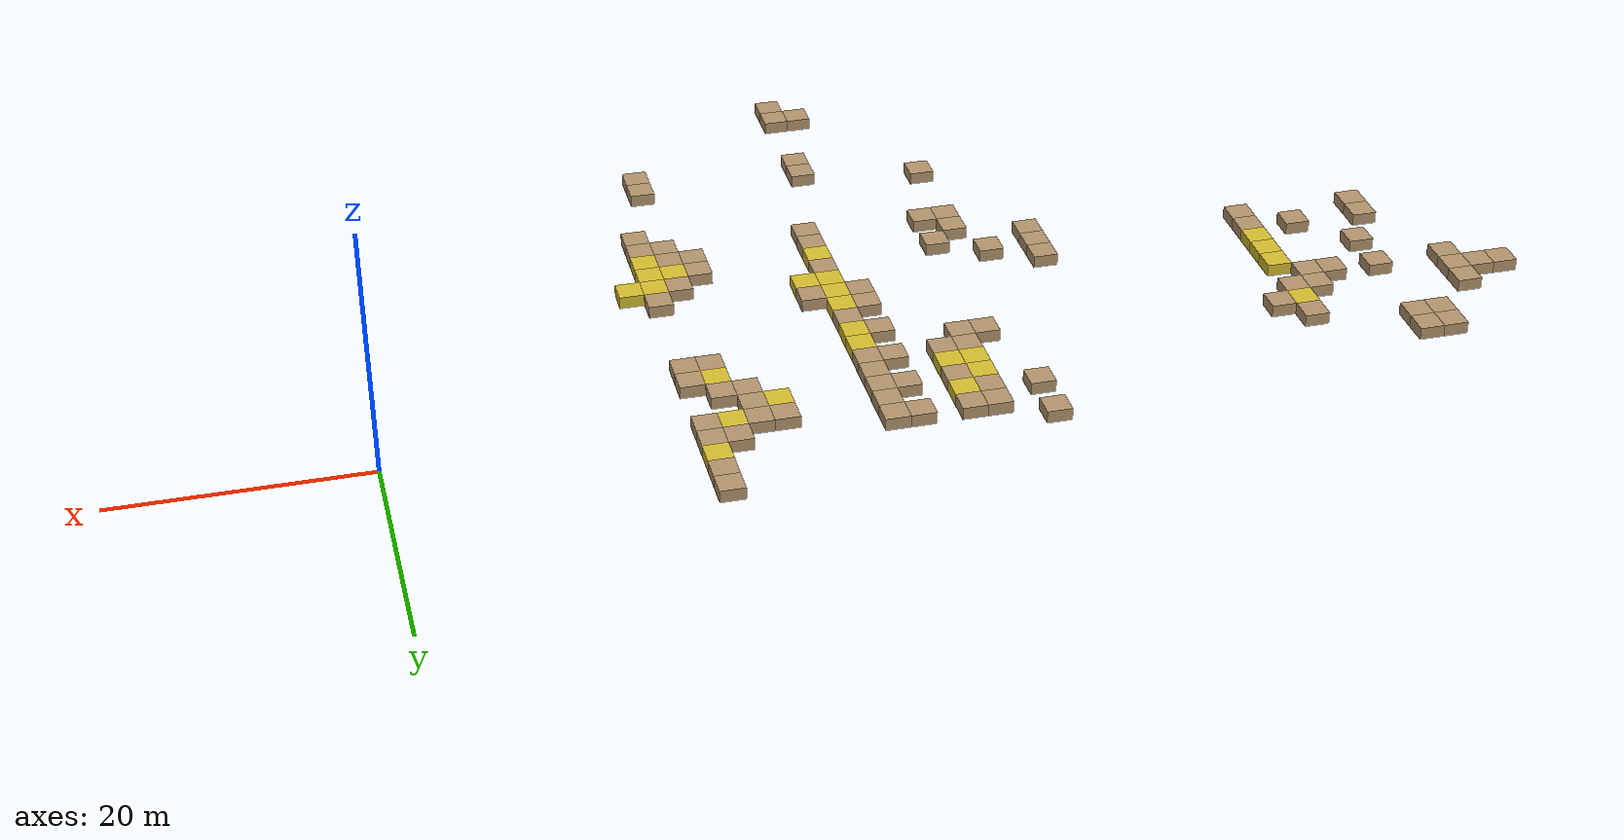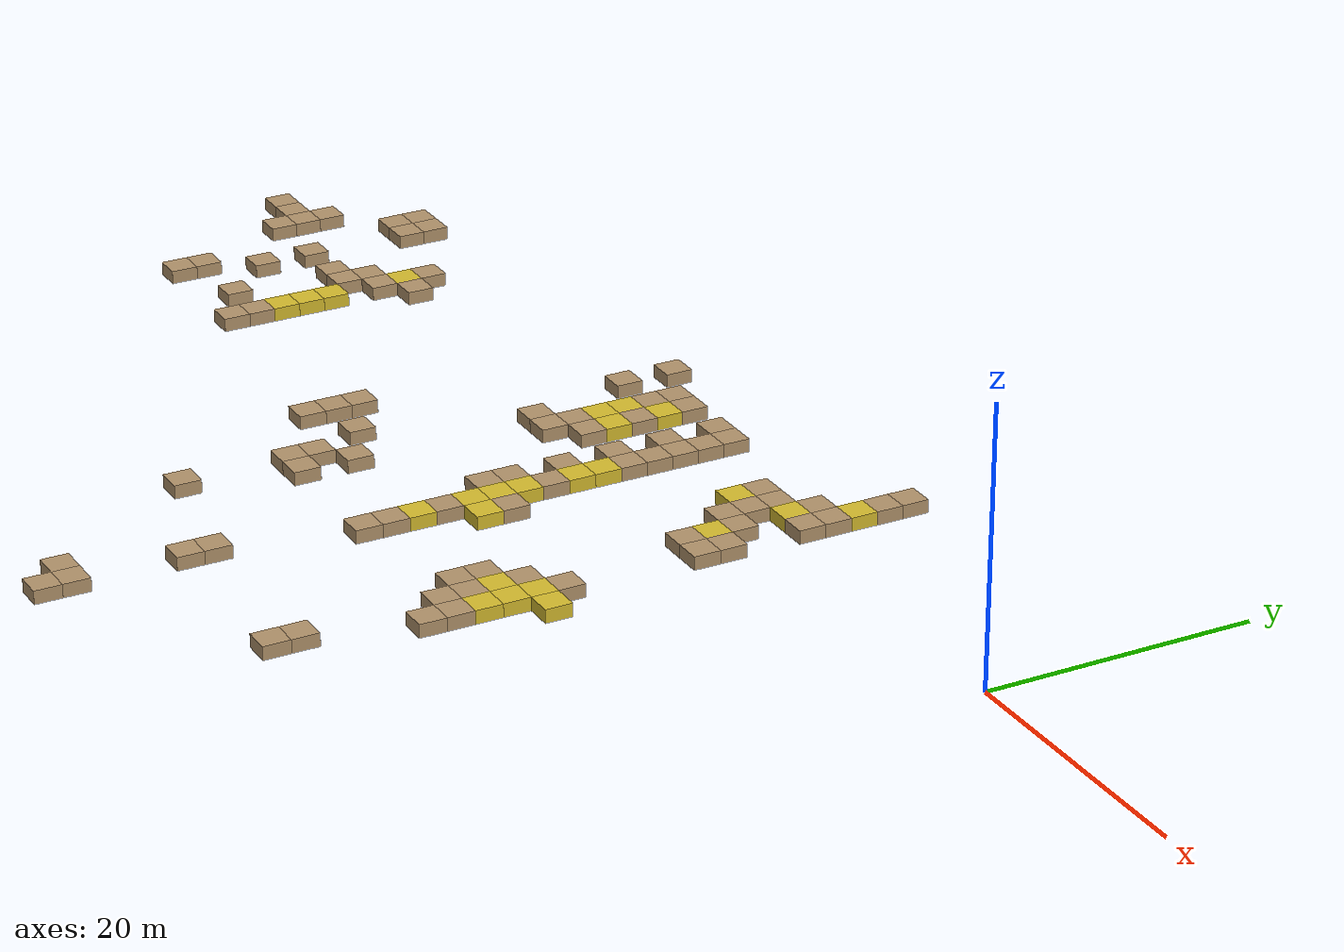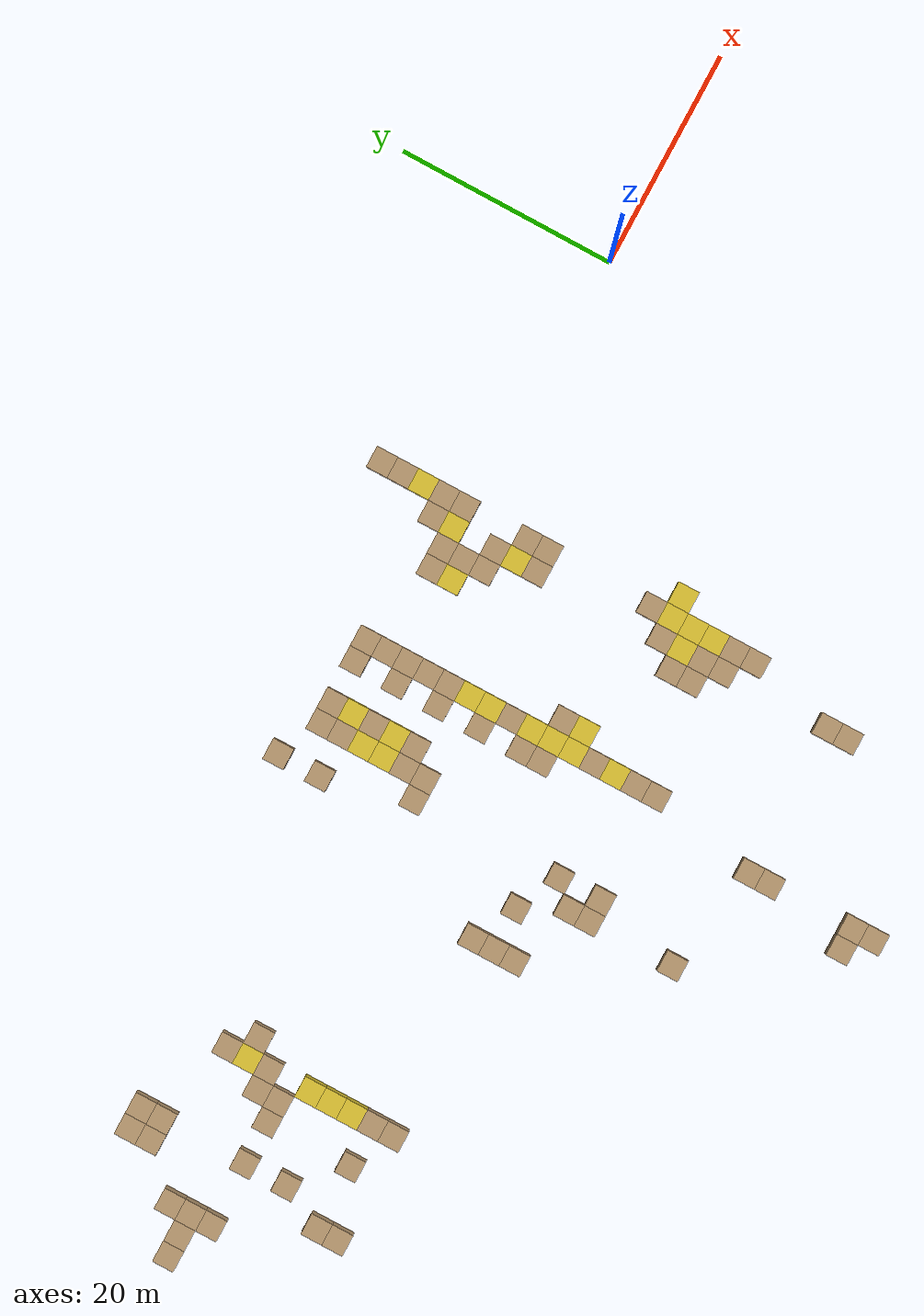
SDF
<sdf version="1.6">
 <world name="map5_factory_approx">
  <model name="map5_obstacle_blocks">
   <static>true</static>
   <link name="obs_0043_0039">
    <pose>-22.210 -19.041 0.500 0 0 0</pose>
    <collision name="collision"><geometry><box><size>2.000 2.000 1.000</size></box></geometry></collision>
    <visual name="visual">
     <geometry><box><size>2.000 2.000 1.000</size></box></geometry>
     <material><ambient>0.84 0.74 0.18 1</ambient><diffuse>0.84 0.74 0.18 1</diffuse></material>
    </visual>
   </link>
   <link name="obs_0042_0039">
    <pose>-24.210 -19.041 0.500 0 0 0</pose>
    <collision name="collision"><geometry><box><size>2.000 2.000 1.000</size></box></geometry></collision>
    <visual name="visual">
     <geometry><box><size>2.000 2.000 1.000</size></box></geometry>
     <material><ambient>0.84 0.74 0.18 1</ambient><diffuse>0.84 0.74 0.18 1</diffuse></material>
    </visual>
   </link>
   <link name="obs_0041_0032">
    <pose>-26.210 -5.041 0.500 0 0 0</pose>
    <collision name="collision"><geometry><box><size>2.000 2.000 1.000</size></box></geometry></collision>
    <visual name="visual">
     <geometry><box><size>2.000 2.000 1.000</size></box></geometry>
     <material><ambient>0.84 0.74 0.18 1</ambient><diffuse>0.84 0.74 0.18 1</diffuse></material>
    </visual>
   </link>
   <link name="obs_0042_0040">
    <pose>-24.210 -21.041 0.500 0 0 0</pose>
    <collision name="collision"><geometry><box><size>2.000 2.000 1.000</size></box></geometry></collision>
    <visual name="visual">
     <geometry><box><size>2.000 2.000 1.000</size></box></geometry>
     <material><ambient>0.84 0.74 0.18 1</ambient><diffuse>0.84 0.74 0.18 1</diffuse></material>
    </visual>
   </link>
   <link name="obs_0036_0038">
    <pose>-36.210 -17.041 0.500 0 0 0</pose>
    <collision name="collision"><geometry><box><size>2.000 2.000 1.000</size></box></geometry></collision>
    <visual name="visual">
     <geometry><box><size>2.000 2.000 1.000</size></box></geometry>
     <material><ambient>0.84 0.74 0.18 1</ambient><diffuse>0.84 0.74 0.18 1</diffuse></material>
    </visual>
   </link>
   <link name="obs_0039_0030">
    <pose>-30.210 -1.041 0.500 0 0 0</pose>
    <collision name="collision"><geometry><box><size>2.000 2.000 1.000</size></box></geometry></collision>
    <visual name="visual">
     <geometry><box><size>2.000 2.000 1.000</size></box></geometry>
     <material><ambient>0.84 0.74 0.18 1</ambient><diffuse>0.84 0.74 0.18 1</diffuse></material>
    </visual>
   </link>
   <link name="obs_0035_0033">
    <pose>-38.210 -7.041 0.500 0 0 0</pose>
    <collision name="collision"><geometry><box><size>2.000 2.000 1.000</size></box></geometry></collision>
    <visual name="visual">
     <geometry><box><size>2.000 2.000 1.000</size></box></geometry>
     <material><ambient>0.84 0.74 0.18 1</ambient><diffuse>0.84 0.74 0.18 1</diffuse></material>
    </visual>
   </link>
   <link name="obs_0035_0037">
    <pose>-38.210 -15.041 0.500 0 0 0</pose>
    <collision name="collision"><geometry><box><size>2.000 2.000 1.000</size></box></geometry></collision>
    <visual name="visual">
     <geometry><box><size>2.000 2.000 1.000</size></box></geometry>
     <material><ambient>0.84 0.74 0.18 1</ambient><diffuse>0.84 0.74 0.18 1</diffuse></material>
    </visual>
   </link>
   <link name="obs_0035_0036">
    <pose>-38.210 -13.041 0.500 0 0 0</pose>
    <collision name="collision"><geometry><box><size>2.000 2.000 1.000</size></box></geometry></collision>
    <visual name="visual">
     <geometry><box><size>2.000 2.000 1.000</size></box></geometry>
     <material><ambient>0.84 0.74 0.18 1</ambient><diffuse>0.84 0.74 0.18 1</diffuse></material>
    </visual>
   </link>
   <link name="obs_0031_0030">
    <pose>-46.210 -1.041 0.500 0 0 0</pose>
    <collision name="collision"><geometry><box><size>2.000 2.000 1.000</size></box></geometry></collision>
    <visual name="visual">
     <geometry><box><size>2.000 2.000 1.000</size></box></geometry>
     <material><ambient>0.84 0.74 0.18 1</ambient><diffuse>0.84 0.74 0.18 1</diffuse></material>
    </visual>
   </link>
   <link name="obs_0031_0031">
    <pose>-46.210 -3.041 0.500 0 0 0</pose>
    <collision name="collision"><geometry><box><size>2.000 2.000 1.000</size></box></geometry></collision>
    <visual name="visual">
     <geometry><box><size>2.000 2.000 1.000</size></box></geometry>
     <material><ambient>0.84 0.74 0.18 1</ambient><diffuse>0.84 0.74 0.18 1</diffuse></material>
    </visual>
   </link>
   <link name="obs_0035_0038">
    <pose>-38.210 -17.041 0.500 0 0 0</pose>
    <collision name="collision"><geometry><box><size>2.000 2.000 1.000</size></box></geometry></collision>
    <visual name="visual">
     <geometry><box><size>2.000 2.000 1.000</size></box></geometry>
     <material><ambient>0.84 0.74 0.18 1</ambient><diffuse>0.84 0.74 0.18 1</diffuse></material>
    </visual>
   </link>
   <link name="obs_0032_0029">
    <pose>-44.210 0.959 0.500 0 0 0</pose>
    <collision name="collision"><geometry><box><size>2.000 2.000 1.000</size></box></geometry></collision>
    <visual name="visual">
     <geometry><box><size>2.000 2.000 1.000</size></box></geometry>
     <material><ambient>0.84 0.74 0.18 1</ambient><diffuse>0.84 0.74 0.18 1</diffuse></material>
    </visual>
   </link>
   <link name="obs_0035_0034">
    <pose>-38.210 -9.041 0.500 0 0 0</pose>
    <collision name="collision"><geometry><box><size>2.000 2.000 1.000</size></box></geometry></collision>
    <visual name="visual">
     <geometry><box><size>2.000 2.000 1.000</size></box></geometry>
     <material><ambient>0.84 0.74 0.18 1</ambient><diffuse>0.84 0.74 0.18 1</diffuse></material>
    </visual>
   </link>
   <link name="obs_0041_0040">
    <pose>-26.210 -21.041 0.500 0 0 0</pose>
    <collision name="collision"><geometry><box><size>2.000 2.000 1.000</size></box></geometry></collision>
    <visual name="visual">
     <geometry><box><size>2.000 2.000 1.000</size></box></geometry>
     <material><ambient>0.84 0.74 0.18 1</ambient><diffuse>0.84 0.74 0.18 1</diffuse></material>
    </visual>
   </link>
   <link name="obs_0032_0031">
    <pose>-44.210 -3.041 0.500 0 0 0</pose>
    <collision name="collision"><geometry><box><size>2.000 2.000 1.000</size></box></geometry></collision>
    <visual name="visual">
     <geometry><box><size>2.000 2.000 1.000</size></box></geometry>
     <material><ambient>0.84 0.74 0.18 1</ambient><diffuse>0.84 0.74 0.18 1</diffuse></material>
    </visual>
   </link>
   <link name="obs_0042_0027">
    <pose>-24.210 4.959 0.500 0 0 0</pose>
    <collision name="collision"><geometry><box><size>2.000 2.000 1.000</size></box></geometry></collision>
    <visual name="visual">
     <geometry><box><size>2.000 2.000 1.000</size></box></geometry>
     <material><ambient>0.84 0.74 0.18 1</ambient><diffuse>0.84 0.74 0.18 1</diffuse></material>
    </visual>
   </link>
   <link name="obs_0017_0035">
    <pose>-74.210 -11.041 0.500 0 0 0</pose>
    <collision name="collision"><geometry><box><size>2.000 2.000 1.000</size></box></geometry></collision>
    <visual name="visual">
     <geometry><box><size>2.000 2.000 1.000</size></box></geometry>
     <material><ambient>0.84 0.74 0.18 1</ambient><diffuse>0.84 0.74 0.18 1</diffuse></material>
    </visual>
   </link>
   <link name="obs_0017_0036">
    <pose>-74.210 -13.041 0.500 0 0 0</pose>
    <collision name="collision"><geometry><box><size>2.000 2.000 1.000</size></box></geometry></collision>
    <visual name="visual">
     <geometry><box><size>2.000 2.000 1.000</size></box></geometry>
     <material><ambient>0.84 0.74 0.18 1</ambient><diffuse>0.84 0.74 0.18 1</diffuse></material>
    </visual>
   </link>
   <link name="obs_0042_0041">
    <pose>-24.210 -23.041 0.500 0 0 0</pose>
    <collision name="collision"><geometry><box><size>2.000 2.000 1.000</size></box></geometry></collision>
    <visual name="visual">
     <geometry><box><size>2.000 2.000 1.000</size></box></geometry>
     <material><ambient>0.84 0.74 0.18 1</ambient><diffuse>0.84 0.74 0.18 1</diffuse></material>
    </visual>
   </link>
   <link name="obs_0035_0040">
    <pose>-38.210 -21.041 0.500 0 0 0</pose>
    <collision name="collision"><geometry><box><size>2.000 2.000 1.000</size></box></geometry></collision>
    <visual name="visual">
     <geometry><box><size>2.000 2.000 1.000</size></box></geometry>
     <material><ambient>0.84 0.74 0.18 1</ambient><diffuse>0.84 0.74 0.18 1</diffuse></material>
    </visual>
   </link>
   <link name="obs_0017_0037">
    <pose>-74.210 -15.041 0.500 0 0 0</pose>
    <collision name="collision"><geometry><box><size>2.000 2.000 1.000</size></box></geometry></collision>
    <visual name="visual">
     <geometry><box><size>2.000 2.000 1.000</size></box></geometry>
     <material><ambient>0.84 0.74 0.18 1</ambient><diffuse>0.84 0.74 0.18 1</diffuse></material>
    </visual>
   </link>
   <link name="obs_0041_0029">
    <pose>-26.210 0.959 0.500 0 0 0</pose>
    <collision name="collision"><geometry><box><size>2.000 2.000 1.000</size></box></geometry></collision>
    <visual name="visual">
     <geometry><box><size>2.000 2.000 1.000</size></box></geometry>
     <material><ambient>0.84 0.74 0.18 1</ambient><diffuse>0.84 0.74 0.18 1</diffuse></material>
    </visual>
   </link>
   <link name="obs_0017_0032">
    <pose>-74.210 -5.041 0.500 0 0 0</pose>
    <collision name="collision"><geometry><box><size>2.000 2.000 1.000</size></box></geometry></collision>
    <visual name="visual">
     <geometry><box><size>2.000 2.000 1.000</size></box></geometry>
     <material><ambient>0.84 0.74 0.18 1</ambient><diffuse>0.84 0.74 0.18 1</diffuse></material>
    </visual>
   </link>
   <link name="obs_0035_0041">
    <pose>-38.210 -23.041 0.500 0 0 0</pose>
    <collision name="collision"><geometry><box><size>2.000 2.000 1.000</size></box></geometry></collision>
    <visual name="visual">
     <geometry><box><size>2.000 2.000 1.000</size></box></geometry>
     <material><ambient>0.70 0.58 0.42 1</ambient><diffuse>0.70 0.58 0.42 1</diffuse></material>
    </visual>
   </link>
   <link name="obs_0042_0029">
    <pose>-24.210 0.959 0.500 0 0 0</pose>
    <collision name="collision"><geometry><box><size>2.000 2.000 1.000</size></box></geometry></collision>
    <visual name="visual">
     <geometry><box><size>2.000 2.000 1.000</size></box></geometry>
     <material><ambient>0.70 0.58 0.42 1</ambient><diffuse>0.70 0.58 0.42 1</diffuse></material>
    </visual>
   </link>
   <link name="obs_0035_0035">
    <pose>-38.210 -11.041 0.500 0 0 0</pose>
    <collision name="collision"><geometry><box><size>2.000 2.000 1.000</size></box></geometry></collision>
    <visual name="visual">
     <geometry><box><size>2.000 2.000 1.000</size></box></geometry>
     <material><ambient>0.70 0.58 0.42 1</ambient><diffuse>0.70 0.58 0.42 1</diffuse></material>
    </visual>
   </link>
   <link name="obs_0042_0028">
    <pose>-24.210 2.959 0.500 0 0 0</pose>
    <collision name="collision"><geometry><box><size>2.000 2.000 1.000</size></box></geometry></collision>
    <visual name="visual">
     <geometry><box><size>2.000 2.000 1.000</size></box></geometry>
     <material><ambient>0.70 0.58 0.42 1</ambient><diffuse>0.70 0.58 0.42 1</diffuse></material>
    </visual>
   </link>
   <link name="obs_0041_0031">
    <pose>-26.210 -3.041 0.500 0 0 0</pose>
    <collision name="collision"><geometry><box><size>2.000 2.000 1.000</size></box></geometry></collision>
    <visual name="visual">
     <geometry><box><size>2.000 2.000 1.000</size></box></geometry>
     <material><ambient>0.70 0.58 0.42 1</ambient><diffuse>0.70 0.58 0.42 1</diffuse></material>
    </visual>
   </link>
   <link name="obs_0042_0026">
    <pose>-24.210 6.959 0.500 0 0 0</pose>
    <collision name="collision"><geometry><box><size>2.000 2.000 1.000</size></box></geometry></collision>
    <visual name="visual">
     <geometry><box><size>2.000 2.000 1.000</size></box></geometry>
     <material><ambient>0.70 0.58 0.42 1</ambient><diffuse>0.70 0.58 0.42 1</diffuse></material>
    </visual>
   </link>
   <link name="obs_0040_0029">
    <pose>-28.210 0.959 0.500 0 0 0</pose>
    <collision name="collision"><geometry><box><size>2.000 2.000 1.000</size></box></geometry></collision>
    <visual name="visual">
     <geometry><box><size>2.000 2.000 1.000</size></box></geometry>
     <material><ambient>0.70 0.58 0.42 1</ambient><diffuse>0.70 0.58 0.42 1</diffuse></material>
    </visual>
   </link>
   <link name="obs_0040_0030">
    <pose>-28.210 -1.041 0.500 0 0 0</pose>
    <collision name="collision"><geometry><box><size>2.000 2.000 1.000</size></box></geometry></collision>
    <visual name="visual">
     <geometry><box><size>2.000 2.000 1.000</size></box></geometry>
     <material><ambient>0.70 0.58 0.42 1</ambient><diffuse>0.70 0.58 0.42 1</diffuse></material>
    </visual>
   </link>
   <link name="obs_0035_0032">
    <pose>-38.210 -5.041 0.500 0 0 0</pose>
    <collision name="collision"><geometry><box><size>2.000 2.000 1.000</size></box></geometry></collision>
    <visual name="visual">
     <geometry><box><size>2.000 2.000 1.000</size></box></geometry>
     <material><ambient>0.70 0.58 0.42 1</ambient><diffuse>0.70 0.58 0.42 1</diffuse></material>
    </visual>
   </link>
   <link name="obs_0039_0029">
    <pose>-30.210 0.959 0.500 0 0 0</pose>
    <collision name="collision"><geometry><box><size>2.000 2.000 1.000</size></box></geometry></collision>
    <visual name="visual">
     <geometry><box><size>2.000 2.000 1.000</size></box></geometry>
     <material><ambient>0.70 0.58 0.42 1</ambient><diffuse>0.70 0.58 0.42 1</diffuse></material>
    </visual>
   </link>
   <link name="obs_0031_0032">
    <pose>-46.210 -5.041 0.500 0 0 0</pose>
    <collision name="collision"><geometry><box><size>2.000 2.000 1.000</size></box></geometry></collision>
    <visual name="visual">
     <geometry><box><size>2.000 2.000 1.000</size></box></geometry>
     <material><ambient>0.70 0.58 0.42 1</ambient><diffuse>0.70 0.58 0.42 1</diffuse></material>
    </visual>
   </link>
   <link name="obs_0042_0038">
    <pose>-24.210 -17.041 0.500 0 0 0</pose>
    <collision name="collision"><geometry><box><size>2.000 2.000 1.000</size></box></geometry></collision>
    <visual name="visual">
     <geometry><box><size>2.000 2.000 1.000</size></box></geometry>
     <material><ambient>0.70 0.58 0.42 1</ambient><diffuse>0.70 0.58 0.42 1</diffuse></material>
    </visual>
   </link>
   <link name="obs_0035_0039">
    <pose>-38.210 -19.041 0.500 0 0 0</pose>
    <collision name="collision"><geometry><box><size>2.000 2.000 1.000</size></box></geometry></collision>
    <visual name="visual">
     <geometry><box><size>2.000 2.000 1.000</size></box></geometry>
     <material><ambient>0.70 0.58 0.42 1</ambient><diffuse>0.70 0.58 0.42 1</diffuse></material>
    </visual>
   </link>
   <link name="obs_0012_0038">
    <pose>-84.210 -17.041 0.500 0 0 0</pose>
    <collision name="collision"><geometry><box><size>2.000 2.000 1.000</size></box></geometry></collision>
    <visual name="visual">
     <geometry><box><size>2.000 2.000 1.000</size></box></geometry>
     <material><ambient>0.70 0.58 0.42 1</ambient><diffuse>0.70 0.58 0.42 1</diffuse></material>
    </visual>
   </link>
   <link name="obs_0034_0037">
    <pose>-40.210 -15.041 0.500 0 0 0</pose>
    <collision name="collision"><geometry><box><size>2.000 2.000 1.000</size></box></geometry></collision>
    <visual name="visual">
     <geometry><box><size>2.000 2.000 1.000</size></box></geometry>
     <material><ambient>0.70 0.58 0.42 1</ambient><diffuse>0.70 0.58 0.42 1</diffuse></material>
    </visual>
   </link>
   <link name="obs_0031_0028">
    <pose>-46.210 2.959 0.500 0 0 0</pose>
    <collision name="collision"><geometry><box><size>2.000 2.000 1.000</size></box></geometry></collision>
    <visual name="visual">
     <geometry><box><size>2.000 2.000 1.000</size></box></geometry>
     <material><ambient>0.70 0.58 0.42 1</ambient><diffuse>0.70 0.58 0.42 1</diffuse></material>
    </visual>
   </link>
   <link name="obs_0042_0025">
    <pose>-24.210 8.959 0.500 0 0 0</pose>
    <collision name="collision"><geometry><box><size>2.000 2.000 1.000</size></box></geometry></collision>
    <visual name="visual">
     <geometry><box><size>2.000 2.000 1.000</size></box></geometry>
     <material><ambient>0.70 0.58 0.42 1</ambient><diffuse>0.70 0.58 0.42 1</diffuse></material>
    </visual>
   </link>
   <link name="obs_0031_0029">
    <pose>-46.210 0.959 0.500 0 0 0</pose>
    <collision name="collision"><geometry><box><size>2.000 2.000 1.000</size></box></geometry></collision>
    <visual name="visual">
     <geometry><box><size>2.000 2.000 1.000</size></box></geometry>
     <material><ambient>0.70 0.58 0.42 1</ambient><diffuse>0.70 0.58 0.42 1</diffuse></material>
    </visual>
   </link>
   <link name="obs_0030_0040">
    <pose>-48.210 -21.041 0.500 0 0 0</pose>
    <collision name="collision"><geometry><box><size>2.000 2.000 1.000</size></box></geometry></collision>
    <visual name="visual">
     <geometry><box><size>2.000 2.000 1.000</size></box></geometry>
     <material><ambient>0.70 0.58 0.42 1</ambient><diffuse>0.70 0.58 0.42 1</diffuse></material>
    </visual>
   </link>
   <link name="obs_0010_0034">
    <pose>-88.210 -9.041 0.500 0 0 0</pose>
    <collision name="collision"><geometry><box><size>2.000 2.000 1.000</size></box></geometry></collision>
    <visual name="visual">
     <geometry><box><size>2.000 2.000 1.000</size></box></geometry>
     <material><ambient>0.70 0.58 0.42 1</ambient><diffuse>0.70 0.58 0.42 1</diffuse></material>
    </visual>
   </link>
   <link name="obs_0030_0033">
    <pose>-48.210 -7.041 0.500 0 0 0</pose>
    <collision name="collision"><geometry><box><size>2.000 2.000 1.000</size></box></geometry></collision>
    <visual name="visual">
     <geometry><box><size>2.000 2.000 1.000</size></box></geometry>
     <material><ambient>0.70 0.58 0.42 1</ambient><diffuse>0.70 0.58 0.42 1</diffuse></material>
    </visual>
   </link>
   <link name="obs_0017_0033">
    <pose>-74.210 -7.041 0.500 0 0 0</pose>
    <collision name="collision"><geometry><box><size>2.000 2.000 1.000</size></box></geometry></collision>
    <visual name="visual">
     <geometry><box><size>2.000 2.000 1.000</size></box></geometry>
     <material><ambient>0.70 0.58 0.42 1</ambient><diffuse>0.70 0.58 0.42 1</diffuse></material>
    </visual>
   </link>
   <link name="obs_0031_0033">
    <pose>-46.210 -7.041 0.500 0 0 0</pose>
    <collision name="collision"><geometry><box><size>2.000 2.000 1.000</size></box></geometry></collision>
    <visual name="visual">
     <geometry><box><size>2.000 2.000 1.000</size></box></geometry>
     <material><ambient>0.70 0.58 0.42 1</ambient><diffuse>0.70 0.58 0.42 1</diffuse></material>
    </visual>
   </link>
   <link name="obs_0041_0033">
    <pose>-26.210 -7.041 0.500 0 0 0</pose>
    <collision name="collision"><geometry><box><size>2.000 2.000 1.000</size></box></geometry></collision>
    <visual name="visual">
     <geometry><box><size>2.000 2.000 1.000</size></box></geometry>
     <material><ambient>0.70 0.58 0.42 1</ambient><diffuse>0.70 0.58 0.42 1</diffuse></material>
    </visual>
   </link>
   <link name="obs_0034_0032">
    <pose>-40.210 -5.041 0.500 0 0 0</pose>
    <collision name="collision"><geometry><box><size>2.000 2.000 1.000</size></box></geometry></collision>
    <visual name="visual">
     <geometry><box><size>2.000 2.000 1.000</size></box></geometry>
     <material><ambient>0.70 0.58 0.42 1</ambient><diffuse>0.70 0.58 0.42 1</diffuse></material>
    </visual>
   </link>
   <link name="obs_0032_0028">
    <pose>-44.210 2.959 0.500 0 0 0</pose>
    <collision name="collision"><geometry><box><size>2.000 2.000 1.000</size></box></geometry></collision>
    <visual name="visual">
     <geometry><box><size>2.000 2.000 1.000</size></box></geometry>
     <material><ambient>0.70 0.58 0.42 1</ambient><diffuse>0.70 0.58 0.42 1</diffuse></material>
    </visual>
   </link>
   <link name="obs_0042_0043">
    <pose>-24.210 -27.041 0.500 0 0 0</pose>
    <collision name="collision"><geometry><box><size>2.000 2.000 1.000</size></box></geometry></collision>
    <visual name="visual">
     <geometry><box><size>2.000 2.000 1.000</size></box></geometry>
     <material><ambient>0.70 0.58 0.42 1</ambient><diffuse>0.70 0.58 0.42 1</diffuse></material>
    </visual>
   </link>
   <link name="obs_0016_0033">
    <pose>-76.210 -7.041 0.500 0 0 0</pose>
    <collision name="collision"><geometry><box><size>2.000 2.000 1.000</size></box></geometry></collision>
    <visual name="visual">
     <geometry><box><size>2.000 2.000 1.000</size></box></geometry>
     <material><ambient>0.70 0.58 0.42 1</ambient><diffuse>0.70 0.58 0.42 1</diffuse></material>
    </visual>
   </link>
   <link name="obs_0034_0030">
    <pose>-40.210 -1.041 0.500 0 0 0</pose>
    <collision name="collision"><geometry><box><size>2.000 2.000 1.000</size></box></geometry></collision>
    <visual name="visual">
     <geometry><box><size>2.000 2.000 1.000</size></box></geometry>
     <material><ambient>0.70 0.58 0.42 1</ambient><diffuse>0.70 0.58 0.42 1</diffuse></material>
    </visual>
   </link>
   <link name="obs_0032_0032">
    <pose>-44.210 -5.041 0.500 0 0 0</pose>
    <collision name="collision"><geometry><box><size>2.000 2.000 1.000</size></box></geometry></collision>
    <visual name="visual">
     <geometry><box><size>2.000 2.000 1.000</size></box></geometry>
     <material><ambient>0.70 0.58 0.42 1</ambient><diffuse>0.70 0.58 0.42 1</diffuse></material>
    </visual>
   </link>
   <link name="obs_0013_0034">
    <pose>-82.210 -9.041 0.500 0 0 0</pose>
    <collision name="collision"><geometry><box><size>2.000 2.000 1.000</size></box></geometry></collision>
    <visual name="visual">
     <geometry><box><size>2.000 2.000 1.000</size></box></geometry>
     <material><ambient>0.70 0.58 0.42 1</ambient><diffuse>0.70 0.58 0.42 1</diffuse></material>
    </visual>
   </link>
   <link name="obs_0010_0032">
    <pose>-88.210 -5.041 0.500 0 0 0</pose>
    <collision name="collision"><geometry><box><size>2.000 2.000 1.000</size></box></geometry></collision>
    <visual name="visual">
     <geometry><box><size>2.000 2.000 1.000</size></box></geometry>
     <material><ambient>0.70 0.58 0.42 1</ambient><diffuse>0.70 0.58 0.42 1</diffuse></material>
    </visual>
   </link>
   <link name="obs_0041_0039">
    <pose>-26.210 -19.041 0.500 0 0 0</pose>
    <collision name="collision"><geometry><box><size>2.000 2.000 1.000</size></box></geometry></collision>
    <visual name="visual">
     <geometry><box><size>2.000 2.000 1.000</size></box></geometry>
     <material><ambient>0.70 0.58 0.42 1</ambient><diffuse>0.70 0.58 0.42 1</diffuse></material>
    </visual>
   </link>
   <link name="obs_0040_0041">
    <pose>-28.210 -23.041 0.500 0 0 0</pose>
    <collision name="collision"><geometry><box><size>2.000 2.000 1.000</size></box></geometry></collision>
    <visual name="visual">
     <geometry><box><size>2.000 2.000 1.000</size></box></geometry>
     <material><ambient>0.70 0.58 0.42 1</ambient><diffuse>0.70 0.58 0.42 1</diffuse></material>
    </visual>
   </link>
   <link name="obs_0035_0042">
    <pose>-38.210 -25.041 0.500 0 0 0</pose>
    <collision name="collision"><geometry><box><size>2.000 2.000 1.000</size></box></geometry></collision>
    <visual name="visual">
     <geometry><box><size>2.000 2.000 1.000</size></box></geometry>
     <material><ambient>0.70 0.58 0.42 1</ambient><diffuse>0.70 0.58 0.42 1</diffuse></material>
    </visual>
   </link>
   <link name="obs_0034_0036">
    <pose>-40.210 -13.041 0.500 0 0 0</pose>
    <collision name="collision"><geometry><box><size>2.000 2.000 1.000</size></box></geometry></collision>
    <visual name="visual">
     <geometry><box><size>2.000 2.000 1.000</size></box></geometry>
     <material><ambient>0.70 0.58 0.42 1</ambient><diffuse>0.70 0.58 0.42 1</diffuse></material>
    </visual>
   </link>
   <link name="obs_0036_0037">
    <pose>-36.210 -15.041 0.500 0 0 0</pose>
    <collision name="collision"><geometry><box><size>2.000 2.000 1.000</size></box></geometry></collision>
    <visual name="visual">
     <geometry><box><size>2.000 2.000 1.000</size></box></geometry>
     <material><ambient>0.70 0.58 0.42 1</ambient><diffuse>0.70 0.58 0.42 1</diffuse></material>
    </visual>
   </link>
   <link name="obs_0016_0034">
    <pose>-76.210 -9.041 0.500 0 0 0</pose>
    <collision name="collision"><geometry><box><size>2.000 2.000 1.000</size></box></geometry></collision>
    <visual name="visual">
     <geometry><box><size>2.000 2.000 1.000</size></box></geometry>
     <material><ambient>0.70 0.58 0.42 1</ambient><diffuse>0.70 0.58 0.42 1</diffuse></material>
    </visual>
   </link>
   <link name="obs_0015_0034">
    <pose>-78.210 -9.041 0.500 0 0 0</pose>
    <collision name="collision"><geometry><box><size>2.000 2.000 1.000</size></box></geometry></collision>
    <visual name="visual">
     <geometry><box><size>2.000 2.000 1.000</size></box></geometry>
     <material><ambient>0.70 0.58 0.42 1</ambient><diffuse>0.70 0.58 0.42 1</diffuse></material>
    </visual>
   </link>
   <link name="obs_0042_0042">
    <pose>-24.210 -25.041 0.500 0 0 0</pose>
    <collision name="collision"><geometry><box><size>2.000 2.000 1.000</size></box></geometry></collision>
    <visual name="visual">
     <geometry><box><size>2.000 2.000 1.000</size></box></geometry>
     <material><ambient>0.70 0.58 0.42 1</ambient><diffuse>0.70 0.58 0.42 1</diffuse></material>
    </visual>
   </link>
   <link name="obs_0035_0031">
    <pose>-38.210 -3.041 0.500 0 0 0</pose>
    <collision name="collision"><geometry><box><size>2.000 2.000 1.000</size></box></geometry></collision>
    <visual name="visual">
     <geometry><box><size>2.000 2.000 1.000</size></box></geometry>
     <material><ambient>0.70 0.58 0.42 1</ambient><diffuse>0.70 0.58 0.42 1</diffuse></material>
    </visual>
   </link>
   <link name="obs_0032_0030">
    <pose>-44.210 -1.041 0.500 0 0 0</pose>
    <collision name="collision"><geometry><box><size>2.000 2.000 1.000</size></box></geometry></collision>
    <visual name="visual">
     <geometry><box><size>2.000 2.000 1.000</size></box></geometry>
     <material><ambient>0.70 0.58 0.42 1</ambient><diffuse>0.70 0.58 0.42 1</diffuse></material>
    </visual>
   </link>
   <link name="obs_0029_0029">
    <pose>-50.210 0.959 0.500 0 0 0</pose>
    <collision name="collision"><geometry><box><size>2.000 2.000 1.000</size></box></geometry></collision>
    <visual name="visual">
     <geometry><box><size>2.000 2.000 1.000</size></box></geometry>
     <material><ambient>0.70 0.58 0.42 1</ambient><diffuse>0.70 0.58 0.42 1</diffuse></material>
    </visual>
   </link>
   <link name="obs_0013_0036">
    <pose>-82.210 -13.041 0.500 0 0 0</pose>
    <collision name="collision"><geometry><box><size>2.000 2.000 1.000</size></box></geometry></collision>
    <visual name="visual">
     <geometry><box><size>2.000 2.000 1.000</size></box></geometry>
     <material><ambient>0.70 0.58 0.42 1</ambient><diffuse>0.70 0.58 0.42 1</diffuse></material>
    </visual>
   </link>
   <link name="obs_0010_0033">
    <pose>-88.210 -7.041 0.500 0 0 0</pose>
    <collision name="collision"><geometry><box><size>2.000 2.000 1.000</size></box></geometry></collision>
    <visual name="visual">
     <geometry><box><size>2.000 2.000 1.000</size></box></geometry>
     <material><ambient>0.70 0.58 0.42 1</ambient><diffuse>0.70 0.58 0.42 1</diffuse></material>
    </visual>
   </link>
   <link name="obs_0041_0047">
    <pose>-26.210 -35.041 0.500 0 0 0</pose>
    <collision name="collision"><geometry><box><size>2.000 2.000 1.000</size></box></geometry></collision>
    <visual name="visual">
     <geometry><box><size>2.000 2.000 1.000</size></box></geometry>
     <material><ambient>0.70 0.58 0.42 1</ambient><diffuse>0.70 0.58 0.42 1</diffuse></material>
    </visual>
   </link>
   <link name="obs_0041_0042">
    <pose>-26.210 -25.041 0.500 0 0 0</pose>
    <collision name="collision"><geometry><box><size>2.000 2.000 1.000</size></box></geometry></collision>
    <visual name="visual">
     <geometry><box><size>2.000 2.000 1.000</size></box></geometry>
     <material><ambient>0.70 0.58 0.42 1</ambient><diffuse>0.70 0.58 0.42 1</diffuse></material>
    </visual>
   </link>
   <link name="obs_0034_0048">
    <pose>-40.210 -37.041 0.500 0 0 0</pose>
    <collision name="collision"><geometry><box><size>2.000 2.000 1.000</size></box></geometry></collision>
    <visual name="visual">
     <geometry><box><size>2.000 2.000 1.000</size></box></geometry>
     <material><ambient>0.70 0.58 0.42 1</ambient><diffuse>0.70 0.58 0.42 1</diffuse></material>
    </visual>
   </link>
   <link name="obs_0017_0039">
    <pose>-74.210 -19.041 0.500 0 0 0</pose>
    <collision name="collision"><geometry><box><size>2.000 2.000 1.000</size></box></geometry></collision>
    <visual name="visual">
     <geometry><box><size>2.000 2.000 1.000</size></box></geometry>
     <material><ambient>0.70 0.58 0.42 1</ambient><diffuse>0.70 0.58 0.42 1</diffuse></material>
    </visual>
   </link>
   <link name="obs_0026_0039">
    <pose>-56.210 -19.041 0.500 0 0 0</pose>
    <collision name="collision"><geometry><box><size>2.000 2.000 1.000</size></box></geometry></collision>
    <visual name="visual">
     <geometry><box><size>2.000 2.000 1.000</size></box></geometry>
     <material><ambient>0.70 0.58 0.42 1</ambient><diffuse>0.70 0.58 0.42 1</diffuse></material>
    </visual>
   </link>
   <link name="obs_0041_0048">
    <pose>-26.210 -37.041 0.500 0 0 0</pose>
    <collision name="collision"><geometry><box><size>2.000 2.000 1.000</size></box></geometry></collision>
    <visual name="visual">
     <geometry><box><size>2.000 2.000 1.000</size></box></geometry>
     <material><ambient>0.70 0.58 0.42 1</ambient><diffuse>0.70 0.58 0.42 1</diffuse></material>
    </visual>
   </link>
   <link name="obs_0040_0031">
    <pose>-28.210 -3.041 0.500 0 0 0</pose>
    <collision name="collision"><geometry><box><size>2.000 2.000 1.000</size></box></geometry></collision>
    <visual name="visual">
     <geometry><box><size>2.000 2.000 1.000</size></box></geometry>
     <material><ambient>0.70 0.58 0.42 1</ambient><diffuse>0.70 0.58 0.42 1</diffuse></material>
    </visual>
   </link>
   <link name="obs_0035_0030">
    <pose>-38.210 -1.041 0.500 0 0 0</pose>
    <collision name="collision"><geometry><box><size>2.000 2.000 1.000</size></box></geometry></collision>
    <visual name="visual">
     <geometry><box><size>2.000 2.000 1.000</size></box></geometry>
     <material><ambient>0.70 0.58 0.42 1</ambient><diffuse>0.70 0.58 0.42 1</diffuse></material>
    </visual>
   </link>
   <link name="obs_0030_0042">
    <pose>-48.210 -25.041 0.500 0 0 0</pose>
    <collision name="collision"><geometry><box><size>2.000 2.000 1.000</size></box></geometry></collision>
    <visual name="visual">
     <geometry><box><size>2.000 2.000 1.000</size></box></geometry>
     <material><ambient>0.70 0.58 0.42 1</ambient><diffuse>0.70 0.58 0.42 1</diffuse></material>
    </visual>
   </link>
   <link name="obs_0029_0041">
    <pose>-50.210 -23.041 0.500 0 0 0</pose>
    <collision name="collision"><geometry><box><size>2.000 2.000 1.000</size></box></geometry></collision>
    <visual name="visual">
     <geometry><box><size>2.000 2.000 1.000</size></box></geometry>
     <material><ambient>0.70 0.58 0.42 1</ambient><diffuse>0.70 0.58 0.42 1</diffuse></material>
    </visual>
   </link>
   <link name="obs_0041_0041">
    <pose>-26.210 -23.041 0.500 0 0 0</pose>
    <collision name="collision"><geometry><box><size>2.000 2.000 1.000</size></box></geometry></collision>
    <visual name="visual">
     <geometry><box><size>2.000 2.000 1.000</size></box></geometry>
     <material><ambient>0.70 0.58 0.42 1</ambient><diffuse>0.70 0.58 0.42 1</diffuse></material>
    </visual>
   </link>
   <link name="obs_0035_0029">
    <pose>-38.210 0.959 0.500 0 0 0</pose>
    <collision name="collision"><geometry><box><size>2.000 2.000 1.000</size></box></geometry></collision>
    <visual name="visual">
     <geometry><box><size>2.000 2.000 1.000</size></box></geometry>
     <material><ambient>0.70 0.58 0.42 1</ambient><diffuse>0.70 0.58 0.42 1</diffuse></material>
    </visual>
   </link>
   <link name="obs_0035_0028">
    <pose>-38.210 2.959 0.500 0 0 0</pose>
    <collision name="collision"><geometry><box><size>2.000 2.000 1.000</size></box></geometry></collision>
    <visual name="visual">
     <geometry><box><size>2.000 2.000 1.000</size></box></geometry>
     <material><ambient>0.70 0.58 0.42 1</ambient><diffuse>0.70 0.58 0.42 1</diffuse></material>
    </visual>
   </link>
   <link name="obs_0034_0047">
    <pose>-40.210 -35.041 0.500 0 0 0</pose>
    <collision name="collision"><geometry><box><size>2.000 2.000 1.000</size></box></geometry></collision>
    <visual name="visual">
     <geometry><box><size>2.000 2.000 1.000</size></box></geometry>
     <material><ambient>0.70 0.58 0.42 1</ambient><diffuse>0.70 0.58 0.42 1</diffuse></material>
    </visual>
   </link>
   <link name="obs_0026_0040">
    <pose>-56.210 -21.041 0.500 0 0 0</pose>
    <collision name="collision"><geometry><box><size>2.000 2.000 1.000</size></box></geometry></collision>
    <visual name="visual">
     <geometry><box><size>2.000 2.000 1.000</size></box></geometry>
     <material><ambient>0.70 0.58 0.42 1</ambient><diffuse>0.70 0.58 0.42 1</diffuse></material>
    </visual>
   </link>
   <link name="obs_0026_0038">
    <pose>-56.210 -17.041 0.500 0 0 0</pose>
    <collision name="collision"><geometry><box><size>2.000 2.000 1.000</size></box></geometry></collision>
    <visual name="visual">
     <geometry><box><size>2.000 2.000 1.000</size></box></geometry>
     <material><ambient>0.70 0.58 0.42 1</ambient><diffuse>0.70 0.58 0.42 1</diffuse></material>
    </visual>
   </link>
   <link name="obs_0017_0038">
    <pose>-74.210 -17.041 0.500 0 0 0</pose>
    <collision name="collision"><geometry><box><size>2.000 2.000 1.000</size></box></geometry></collision>
    <visual name="visual">
     <geometry><box><size>2.000 2.000 1.000</size></box></geometry>
     <material><ambient>0.70 0.58 0.42 1</ambient><diffuse>0.70 0.58 0.42 1</diffuse></material>
    </visual>
   </link>
   <link name="obs_0042_0032">
    <pose>-24.210 -5.041 0.500 0 0 0</pose>
    <collision name="collision"><geometry><box><size>2.000 2.000 1.000</size></box></geometry></collision>
    <visual name="visual">
     <geometry><box><size>2.000 2.000 1.000</size></box></geometry>
     <material><ambient>0.70 0.58 0.42 1</ambient><diffuse>0.70 0.58 0.42 1</diffuse></material>
    </visual>
   </link>
   <link name="obs_0041_0028">
    <pose>-26.210 2.959 0.500 0 0 0</pose>
    <collision name="collision"><geometry><box><size>2.000 2.000 1.000</size></box></geometry></collision>
    <visual name="visual">
     <geometry><box><size>2.000 2.000 1.000</size></box></geometry>
     <material><ambient>0.70 0.58 0.42 1</ambient><diffuse>0.70 0.58 0.42 1</diffuse></material>
    </visual>
   </link>
   <link name="obs_0018_0032">
    <pose>-72.210 -5.041 0.500 0 0 0</pose>
    <collision name="collision"><geometry><box><size>2.000 2.000 1.000</size></box></geometry></collision>
    <visual name="visual">
     <geometry><box><size>2.000 2.000 1.000</size></box></geometry>
     <material><ambient>0.70 0.58 0.42 1</ambient><diffuse>0.70 0.58 0.42 1</diffuse></material>
    </visual>
   </link>
   <link name="obs_0009_0033">
    <pose>-90.210 -7.041 0.500 0 0 0</pose>
    <collision name="collision"><geometry><box><size>2.000 2.000 1.000</size></box></geometry></collision>
    <visual name="visual">
     <geometry><box><size>2.000 2.000 1.000</size></box></geometry>
     <material><ambient>0.70 0.58 0.42 1</ambient><diffuse>0.70 0.58 0.42 1</diffuse></material>
    </visual>
   </link>
   <link name="obs_0034_0052">
    <pose>-40.210 -45.041 0.500 0 0 0</pose>
    <collision name="collision"><geometry><box><size>2.000 2.000 1.000</size></box></geometry></collision>
    <visual name="visual">
     <geometry><box><size>2.000 2.000 1.000</size></box></geometry>
     <material><ambient>0.70 0.58 0.42 1</ambient><diffuse>0.70 0.58 0.42 1</diffuse></material>
    </visual>
   </link>
   <link name="obs_0034_0028">
    <pose>-40.210 2.959 0.500 0 0 0</pose>
    <collision name="collision"><geometry><box><size>2.000 2.000 1.000</size></box></geometry></collision>
    <visual name="visual">
     <geometry><box><size>2.000 2.000 1.000</size></box></geometry>
     <material><ambient>0.70 0.58 0.42 1</ambient><diffuse>0.70 0.58 0.42 1</diffuse></material>
    </visual>
   </link>
   <link name="obs_0017_0031">
    <pose>-74.210 -3.041 0.500 0 0 0</pose>
    <collision name="collision"><geometry><box><size>2.000 2.000 1.000</size></box></geometry></collision>
    <visual name="visual">
     <geometry><box><size>2.000 2.000 1.000</size></box></geometry>
     <material><ambient>0.70 0.58 0.42 1</ambient><diffuse>0.70 0.58 0.42 1</diffuse></material>
    </visual>
   </link>
   <link name="obs_0015_0038">
    <pose>-78.210 -17.041 0.500 0 0 0</pose>
    <collision name="collision"><geometry><box><size>2.000 2.000 1.000</size></box></geometry></collision>
    <visual name="visual">
     <geometry><box><size>2.000 2.000 1.000</size></box></geometry>
     <material><ambient>0.70 0.58 0.42 1</ambient><diffuse>0.70 0.58 0.42 1</diffuse></material>
    </visual>
   </link>
   <link name="obs_0013_0030">
    <pose>-82.210 -1.041 0.500 0 0 0</pose>
    <collision name="collision"><geometry><box><size>2.000 2.000 1.000</size></box></geometry></collision>
    <visual name="visual">
     <geometry><box><size>2.000 2.000 1.000</size></box></geometry>
     <material><ambient>0.70 0.58 0.42 1</ambient><diffuse>0.70 0.58 0.42 1</diffuse></material>
    </visual>
   </link>
   <link name="obs_0012_0030">
    <pose>-84.210 -1.041 0.500 0 0 0</pose>
    <collision name="collision"><geometry><box><size>2.000 2.000 1.000</size></box></geometry></collision>
    <visual name="visual">
     <geometry><box><size>2.000 2.000 1.000</size></box></geometry>
     <material><ambient>0.70 0.58 0.42 1</ambient><diffuse>0.70 0.58 0.42 1</diffuse></material>
    </visual>
   </link>
   <link name="obs_0012_0029">
    <pose>-84.210 0.959 0.500 0 0 0</pose>
    <collision name="collision"><geometry><box><size>2.000 2.000 1.000</size></box></geometry></collision>
    <visual name="visual">
     <geometry><box><size>2.000 2.000 1.000</size></box></geometry>
     <material><ambient>0.70 0.58 0.42 1</ambient><diffuse>0.70 0.58 0.42 1</diffuse></material>
    </visual>
   </link>
   <link name="obs_0008_0033">
    <pose>-92.210 -7.041 0.500 0 0 0</pose>
    <collision name="collision"><geometry><box><size>2.000 2.000 1.000</size></box></geometry></collision>
    <visual name="visual">
     <geometry><box><size>2.000 2.000 1.000</size></box></geometry>
     <material><ambient>0.70 0.58 0.42 1</ambient><diffuse>0.70 0.58 0.42 1</diffuse></material>
    </visual>
   </link>
   <link name="obs_0042_0033">
    <pose>-24.210 -7.041 0.500 0 0 0</pose>
    <collision name="collision"><geometry><box><size>2.000 2.000 1.000</size></box></geometry></collision>
    <visual name="visual">
     <geometry><box><size>2.000 2.000 1.000</size></box></geometry>
     <material><ambient>0.70 0.58 0.42 1</ambient><diffuse>0.70 0.58 0.42 1</diffuse></material>
    </visual>
   </link>
   <link name="obs_0040_0040">
    <pose>-28.210 -21.041 0.500 0 0 0</pose>
    <collision name="collision"><geometry><box><size>2.000 2.000 1.000</size></box></geometry></collision>
    <visual name="visual">
     <geometry><box><size>2.000 2.000 1.000</size></box></geometry>
     <material><ambient>0.70 0.58 0.42 1</ambient><diffuse>0.70 0.58 0.42 1</diffuse></material>
    </visual>
   </link>
   <link name="obs_0034_0053">
    <pose>-40.210 -47.041 0.500 0 0 0</pose>
    <collision name="collision"><geometry><box><size>2.000 2.000 1.000</size></box></geometry></collision>
    <visual name="visual">
     <geometry><box><size>2.000 2.000 1.000</size></box></geometry>
     <material><ambient>0.70 0.58 0.42 1</ambient><diffuse>0.70 0.58 0.42 1</diffuse></material>
    </visual>
   </link>
   <link name="obs_0034_0034">
    <pose>-40.210 -9.041 0.500 0 0 0</pose>
    <collision name="collision"><geometry><box><size>2.000 2.000 1.000</size></box></geometry></collision>
    <visual name="visual">
     <geometry><box><size>2.000 2.000 1.000</size></box></geometry>
     <material><ambient>0.70 0.58 0.42 1</ambient><diffuse>0.70 0.58 0.42 1</diffuse></material>
    </visual>
   </link>
   <link name="obs_0033_0052">
    <pose>-42.210 -45.041 0.500 0 0 0</pose>
    <collision name="collision"><geometry><box><size>2.000 2.000 1.000</size></box></geometry></collision>
    <visual name="visual">
     <geometry><box><size>2.000 2.000 1.000</size></box></geometry>
     <material><ambient>0.70 0.58 0.42 1</ambient><diffuse>0.70 0.58 0.42 1</diffuse></material>
    </visual>
   </link>
   <link name="obs_0029_0046">
    <pose>-50.210 -33.041 0.500 0 0 0</pose>
    <collision name="collision"><geometry><box><size>2.000 2.000 1.000</size></box></geometry></collision>
    <visual name="visual">
     <geometry><box><size>2.000 2.000 1.000</size></box></geometry>
     <material><ambient>0.70 0.58 0.42 1</ambient><diffuse>0.70 0.58 0.42 1</diffuse></material>
    </visual>
   </link>
   <link name="obs_0029_0042">
    <pose>-50.210 -25.041 0.500 0 0 0</pose>
    <collision name="collision"><geometry><box><size>2.000 2.000 1.000</size></box></geometry></collision>
    <visual name="visual">
     <geometry><box><size>2.000 2.000 1.000</size></box></geometry>
     <material><ambient>0.70 0.58 0.42 1</ambient><diffuse>0.70 0.58 0.42 1</diffuse></material>
    </visual>
   </link>
   <link name="obs_0029_0027">
    <pose>-50.210 4.959 0.500 0 0 0</pose>
    <collision name="collision"><geometry><box><size>2.000 2.000 1.000</size></box></geometry></collision>
    <visual name="visual">
     <geometry><box><size>2.000 2.000 1.000</size></box></geometry>
     <material><ambient>0.70 0.58 0.42 1</ambient><diffuse>0.70 0.58 0.42 1</diffuse></material>
    </visual>
   </link>
   <link name="obs_0028_0039">
    <pose>-52.210 -19.041 0.500 0 0 0</pose>
    <collision name="collision"><geometry><box><size>2.000 2.000 1.000</size></box></geometry></collision>
    <visual name="visual">
     <geometry><box><size>2.000 2.000 1.000</size></box></geometry>
     <material><ambient>0.70 0.58 0.42 1</ambient><diffuse>0.70 0.58 0.42 1</diffuse></material>
    </visual>
   </link>
   <link name="obs_0013_0029">
    <pose>-82.210 0.959 0.500 0 0 0</pose>
    <collision name="collision"><geometry><box><size>2.000 2.000 1.000</size></box></geometry></collision>
    <visual name="visual">
     <geometry><box><size>2.000 2.000 1.000</size></box></geometry>
     <material><ambient>0.70 0.58 0.42 1</ambient><diffuse>0.70 0.58 0.42 1</diffuse></material>
    </visual>
   </link>
   <link name="obs_0012_0039">
    <pose>-84.210 -19.041 0.500 0 0 0</pose>
    <collision name="collision"><geometry><box><size>2.000 2.000 1.000</size></box></geometry></collision>
    <visual name="visual">
     <geometry><box><size>2.000 2.000 1.000</size></box></geometry>
     <material><ambient>0.70 0.58 0.42 1</ambient><diffuse>0.70 0.58 0.42 1</diffuse></material>
    </visual>
   </link>
  </model>
 </world>
</sdf>
